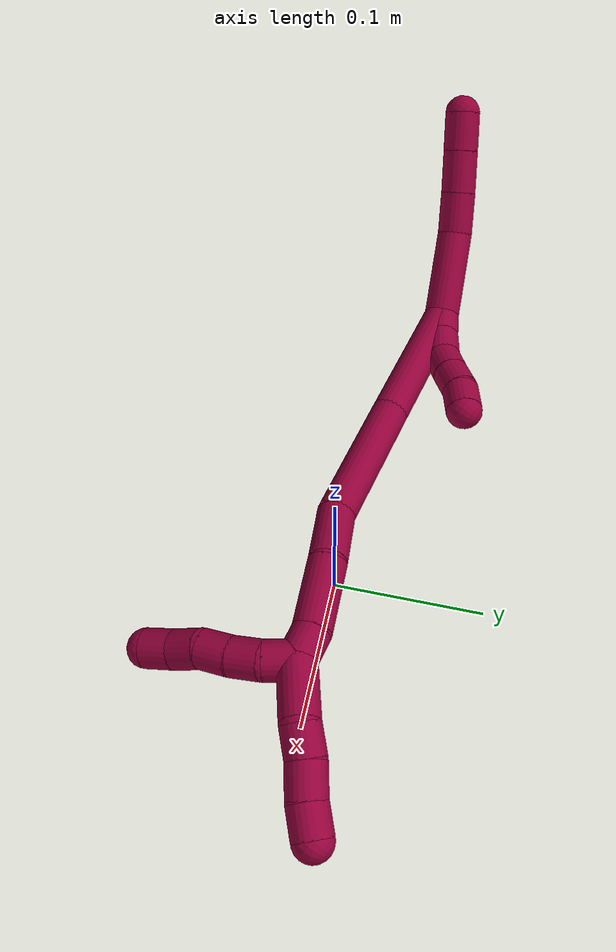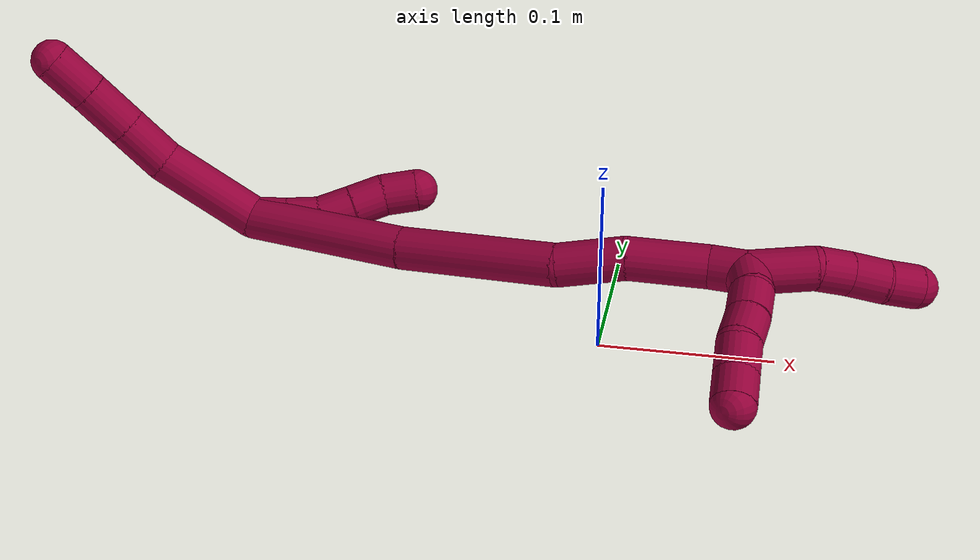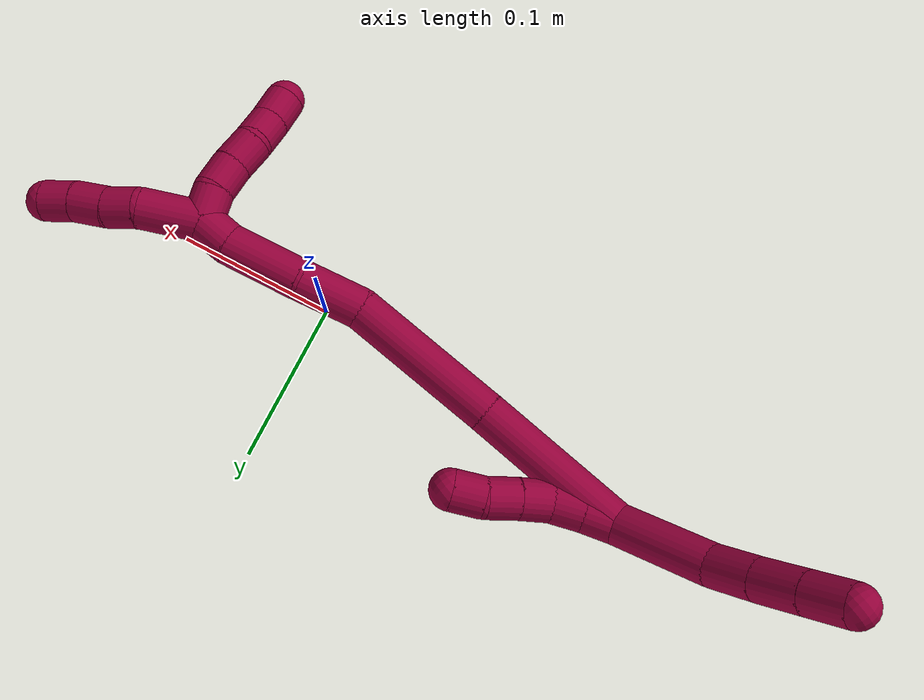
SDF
<sdf version="1.7">
 <world name="default">
  <model name="8">
   <static>0</static>
   <link name="8">
    <collision name="collision-cylinder-e_1_2_8">
     <pose>-0.028159 -0.001225 -0.013415 3.05051 -1.12459 -2.99721</pose>
     <geometry><cylinder><radius>0.0125</radius><length>0.06243</length></cylinder></geometry>
     <surface>
      <friction><ode><mu>1.16</mu><mu2>1.16</mu2><slip1>0</slip1><slip2>0</slip2></ode></friction>
      <contact><ode><kp>1e+06</kp><kd>1</kd><max_vel>0</max_vel><min_depth>0.001</min_depth></ode></contact>
     </surface>
    </collision>
    <visual name="visual-cylinder-e_1_2_8">
     <pose>-0.028159 -0.001225 -0.013415 3.05051 -1.12459 -2.99721</pose>
     <geometry><cylinder><radius>0.0125</radius><length>0.06243</length></cylinder></geometry>
     <material><ambient>0.584314 0 0.227451 1</ambient></material>
    </visual>
    <collision name="collision-cylinder-e_2_8_9">
     <pose>-0.069044 -0.006709 -0.033644 2.58309 -1.00759 -2.18228</pose>
     <geometry><cylinder><radius>0.0125</radius><length>0.030102</length></cylinder></geometry>
     <surface>
      <friction><ode><mu>1.16</mu><mu2>1.16</mu2><slip1>0</slip1><slip2>0</slip2></ode></friction>
      <contact><ode><kp>1e+06</kp><kd>1</kd><max_vel>0</max_vel><min_depth>0.001</min_depth></ode></contact>
     </surface>
    </collision>
    <visual name="visual-cylinder-e_2_8_9">
     <pose>-0.069044 -0.006709 -0.033644 2.58309 -1.00759 -2.18228</pose>
     <geometry><cylinder><radius>0.0125</radius><length>0.030102</length></cylinder></geometry>
     <material><ambient>0.584314 0 0.227451 1</ambient></material>
    </visual>
    <collision name="collision-cylinder-e_3_9_10">
     <pose>-0.094231 -0.015504 -0.047543 2.57197 -0.976952 -2.13452</pose>
     <geometry><cylinder><radius>0.0125</radius><length>0.030067</length></cylinder></geometry>
     <surface>
      <friction><ode><mu>1.16</mu><mu2>1.16</mu2><slip1>0</slip1><slip2>0</slip2></ode></friction>
      <contact><ode><kp>1e+06</kp><kd>1</kd><max_vel>0</max_vel><min_depth>0.001</min_depth></ode></contact>
     </surface>
    </collision>
    <visual name="visual-cylinder-e_3_9_10">
     <pose>-0.094231 -0.015504 -0.047543 2.57197 -0.976952 -2.13452</pose>
     <geometry><cylinder><radius>0.0125</radius><length>0.030067</length></cylinder></geometry>
     <material><ambient>0.584314 0 0.227451 1</ambient></material>
    </visual>
    <collision name="collision-cylinder-e_4_10_6">
     <pose>-0.118072 -0.023912 -0.061197 2.6091 -0.980442 -2.19673</pose>
     <geometry><cylinder><radius>0.0125</radius><length>0.0274</length></cylinder></geometry>
     <surface>
      <friction><ode><mu>1.16</mu><mu2>1.16</mu2><slip1>0</slip1><slip2>0</slip2></ode></friction>
      <contact><ode><kp>1e+06</kp><kd>1</kd><max_vel>0</max_vel><min_depth>0.001</min_depth></ode></contact>
     </surface>
    </collision>
    <visual name="visual-cylinder-e_4_10_6">
     <pose>-0.118072 -0.023912 -0.061197 2.6091 -0.980442 -2.19673</pose>
     <geometry><cylinder><radius>0.0125</radius><length>0.0274</length></cylinder></geometry>
     <material><ambient>0.584314 0 0.227451 1</ambient></material>
    </visual>
    <collision name="collision-cylinder-e_1_2_11">
     <pose>0.007055 -0.004794 0.005219 0.742979 0.78318 0.318992</pose>
     <geometry><cylinder><radius>0.0125</radius><length>0.02</length></cylinder></geometry>
     <surface>
      <friction><ode><mu>1.16</mu><mu2>1.16</mu2><slip1>0</slip1><slip2>0</slip2></ode></friction>
      <contact><ode><kp>1e+06</kp><kd>1</kd><max_vel>0</max_vel><min_depth>0.001</min_depth></ode></contact>
     </surface>
    </collision>
    <visual name="visual-cylinder-e_1_2_11">
     <pose>0.007055 -0.004794 0.005219 0.742979 0.78318 0.318992</pose>
     <geometry><cylinder><radius>0.0125</radius><length>0.02</length></cylinder></geometry>
     <material><ambient>0.584314 0 0.227451 1</ambient></material>
    </visual>
    <collision name="collision-cylinder-e_2_11_12">
     <pose>0.02062 -0.014531 0.0162 0.709024 0.708769 0.272221</pose>
     <geometry><cylinder><radius>0.0125</radius><length>0.02</length></cylinder></geometry>
     <surface>
      <friction><ode><mu>1.16</mu><mu2>1.16</mu2><slip1>0</slip1><slip2>0</slip2></ode></friction>
      <contact><ode><kp>1e+06</kp><kd>1</kd><max_vel>0</max_vel><min_depth>0.001</min_depth></ode></contact>
     </surface>
    </collision>
    <visual name="visual-cylinder-e_2_11_12">
     <pose>0.02062 -0.014531 0.0162 0.709024 0.708769 0.272221</pose>
     <geometry><cylinder><radius>0.0125</radius><length>0.02</length></cylinder></geometry>
     <material><ambient>0.584314 0 0.227451 1</ambient></material>
    </visual>
    <collision name="collision-cylinder-e_3_12_13">
     <pose>0.030977 -0.025664 0.028808 0.735105 0.395052 0.15382</pose>
     <geometry><cylinder><radius>0.0125</radius><length>0.02</length></cylinder></geometry>
     <surface>
      <friction><ode><mu>1.16</mu><mu2>1.16</mu2><slip1>0</slip1><slip2>0</slip2></ode></friction>
      <contact><ode><kp>1e+06</kp><kd>1</kd><max_vel>0</max_vel><min_depth>0.001</min_depth></ode></contact>
     </surface>
    </collision>
    <visual name="visual-cylinder-e_3_12_13">
     <pose>0.030977 -0.025664 0.028808 0.735105 0.395052 0.15382</pose>
     <geometry><cylinder><radius>0.0125</radius><length>0.02</length></cylinder></geometry>
     <material><ambient>0.584314 0 0.227451 1</ambient></material>
    </visual>
    <collision name="collision-cylinder-e_4_13_14">
     <pose>0.03838 -0.037795 0.042871 0.688736 0.363366 0.131588</pose>
     <geometry><cylinder><radius>0.0125</radius><length>0.02</length></cylinder></geometry>
     <surface>
      <friction><ode><mu>1.16</mu><mu2>1.16</mu2><slip1>0</slip1><slip2>0</slip2></ode></friction>
      <contact><ode><kp>1e+06</kp><kd>1</kd><max_vel>0</max_vel><min_depth>0.001</min_depth></ode></contact>
     </surface>
    </collision>
    <visual name="visual-cylinder-e_4_13_14">
     <pose>0.03838 -0.037795 0.042871 0.688736 0.363366 0.131588</pose>
     <geometry><cylinder><radius>0.0125</radius><length>0.02</length></cylinder></geometry>
     <material><ambient>0.584314 0 0.227451 1</ambient></material>
    </visual>
    <collision name="collision-cylinder-e_5_14_5">
     <pose>0.04758 -0.049372 0.056117 0.751703 0.59994 0.242907</pose>
     <geometry><cylinder><radius>0.0125</radius><length>0.02</length></cylinder></geometry>
     <surface>
      <friction><ode><mu>1.16</mu><mu2>1.16</mu2><slip1>0</slip1><slip2>0</slip2></ode></friction>
      <contact><ode><kp>1e+06</kp><kd>1</kd><max_vel>0</max_vel><min_depth>0.001</min_depth></ode></contact>
     </surface>
    </collision>
    <visual name="visual-cylinder-e_5_14_5">
     <pose>0.04758 -0.049372 0.056117 0.751703 0.59994 0.242907</pose>
     <geometry><cylinder><radius>0.0125</radius><length>0.02</length></cylinder></geometry>
     <material><ambient>0.584314 0 0.227451 1</ambient></material>
    </visual>
    <collision name="collision-cylinder-e_1_2_15">
     <pose>0.041262 -0.024949 0.009711 1.19959 0.99524 0.711346</pose>
     <geometry><cylinder><radius>0.0125</radius><length>0.098372</length></cylinder></geometry>
     <surface>
      <friction><ode><mu>1.16</mu><mu2>1.16</mu2><slip1>0</slip1><slip2>0</slip2></ode></friction>
      <contact><ode><kp>1e+06</kp><kd>1</kd><max_vel>0</max_vel><min_depth>0.001</min_depth></ode></contact>
     </surface>
    </collision>
    <visual name="visual-cylinder-e_1_2_15">
     <pose>0.041262 -0.024949 0.009711 1.19959 0.99524 0.711346</pose>
     <geometry><cylinder><radius>0.0125</radius><length>0.098372</length></cylinder></geometry>
     <material><ambient>0.584314 0 0.227451 1</ambient></material>
    </visual>
    <collision name="collision-cylinder-e_2_15_16">
     <pose>0.119972 -0.077235 0.029382 1.22144 0.910279 0.660101</pose>
     <geometry><cylinder><radius>0.0125</radius><length>0.094846</length></cylinder></geometry>
     <surface>
      <friction><ode><mu>1.16</mu><mu2>1.16</mu2><slip1>0</slip1><slip2>0</slip2></ode></friction>
      <contact><ode><kp>1e+06</kp><kd>1</kd><max_vel>0</max_vel><min_depth>0.001</min_depth></ode></contact>
     </surface>
    </collision>
    <visual name="visual-cylinder-e_2_15_16">
     <pose>0.119972 -0.077235 0.029382 1.22144 0.910279 0.660101</pose>
     <geometry><cylinder><radius>0.0125</radius><length>0.094846</length></cylinder></geometry>
     <material><ambient>0.584314 0 0.227451 1</ambient></material>
    </visual>
    <collision name="collision-cylinder-e_3_16_17">
     <pose>0.169965 -0.116982 0.047964 0.963514 0.692828 0.373075</pose>
     <geometry><cylinder><radius>0.0125</radius><length>0.039278</length></cylinder></geometry>
     <surface>
      <friction><ode><mu>1.16</mu><mu2>1.16</mu2><slip1>0</slip1><slip2>0</slip2></ode></friction>
      <contact><ode><kp>1e+06</kp><kd>1</kd><max_vel>0</max_vel><min_depth>0.001</min_depth></ode></contact>
     </surface>
    </collision>
    <visual name="visual-cylinder-e_3_16_17">
     <pose>0.169965 -0.116982 0.047964 0.963514 0.692828 0.373075</pose>
     <geometry><cylinder><radius>0.0125</radius><length>0.039278</length></cylinder></geometry>
     <material><ambient>0.584314 0 0.227451 1</ambient></material>
    </visual>
    <collision name="collision-cylinder-e_4_17_18">
     <pose>0.200626 -0.140554 0.066481 0.845596 0.882006 0.418524</pose>
     <geometry><cylinder><radius>0.0125</radius><length>0.046937</length></cylinder></geometry>
     <surface>
      <friction><ode><mu>1.16</mu><mu2>1.16</mu2><slip1>0</slip1><slip2>0</slip2></ode></friction>
      <contact><ode><kp>1e+06</kp><kd>1</kd><max_vel>0</max_vel><min_depth>0.001</min_depth></ode></contact>
     </surface>
    </collision>
    <visual name="visual-cylinder-e_4_17_18">
     <pose>0.200626 -0.140554 0.066481 0.845596 0.882006 0.418524</pose>
     <geometry><cylinder><radius>0.0125</radius><length>0.046937</length></cylinder></geometry>
     <material><ambient>0.584314 0 0.227451 1</ambient></material>
    </visual>
    <collision name="collision-cylinder-e_5_18_1">
     <pose>0.227133 -0.157296 0.078438 1.21654 0.953971 0.690865</pose>
     <geometry><cylinder><radius>0.0125</radius><length>0.020567</length></cylinder></geometry>
     <surface>
      <friction><ode><mu>1.16</mu><mu2>1.16</mu2><slip1>0</slip1><slip2>0</slip2></ode></friction>
      <contact><ode><kp>1e+06</kp><kd>1</kd><max_vel>0</max_vel><min_depth>0.001</min_depth></ode></contact>
     </surface>
    </collision>
    <visual name="visual-cylinder-e_5_18_1">
     <pose>0.227133 -0.157296 0.078438 1.21654 0.953971 0.690865</pose>
     <geometry><cylinder><radius>0.0125</radius><length>0.020567</length></cylinder></geometry>
     <material><ambient>0.584314 0 0.227451 1</ambient></material>
    </visual>
    <collision name="collision-cylinder-e_1_1_19">
     <pose>0.247118 -0.171816 0.092513 0.639857 0.658983 0.225625</pose>
     <geometry><cylinder><radius>0.0125</radius><length>0.037877</length></cylinder></geometry>
     <surface>
      <friction><ode><mu>1.16</mu><mu2>1.16</mu2><slip1>0</slip1><slip2>0</slip2></ode></friction>
      <contact><ode><kp>1e+06</kp><kd>1</kd><max_vel>0</max_vel><min_depth>0.001</min_depth></ode></contact>
     </surface>
    </collision>
    <visual name="visual-cylinder-e_1_1_19">
     <pose>0.247118 -0.171816 0.092513 0.639857 0.658983 0.225625</pose>
     <geometry><cylinder><radius>0.0125</radius><length>0.037877</length></cylinder></geometry>
     <material><ambient>0.584314 0 0.227451 1</ambient></material>
    </visual>
    <collision name="collision-cylinder-e_2_19_20">
     <pose>0.265363 -0.182492 0.111925 0.230393 0.718656 0.086874</pose>
     <geometry><cylinder><radius>0.0125</radius><length>0.020199</length></cylinder></geometry>
     <surface>
      <friction><ode><mu>1.16</mu><mu2>1.16</mu2><slip1>0</slip1><slip2>0</slip2></ode></friction>
      <contact><ode><kp>1e+06</kp><kd>1</kd><max_vel>0</max_vel><min_depth>0.001</min_depth></ode></contact>
     </surface>
    </collision>
    <visual name="visual-cylinder-e_2_19_20">
     <pose>0.265363 -0.182492 0.111925 0.230393 0.718656 0.086874</pose>
     <geometry><cylinder><radius>0.0125</radius><length>0.020199</length></cylinder></geometry>
     <material><ambient>0.584314 0 0.227451 1</ambient></material>
    </visual>
    <collision name="collision-cylinder-e_3_20_21">
     <pose>0.280234 -0.186564 0.126137 0.330439 0.851502 0.150942</pose>
     <geometry><cylinder><radius>0.0125</radius><length>0.021857</length></cylinder></geometry>
     <surface>
      <friction><ode><mu>1.16</mu><mu2>1.16</mu2><slip1>0</slip1><slip2>0</slip2></ode></friction>
      <contact><ode><kp>1e+06</kp><kd>1</kd><max_vel>0</max_vel><min_depth>0.001</min_depth></ode></contact>
     </surface>
    </collision>
    <visual name="visual-cylinder-e_3_20_21">
     <pose>0.280234 -0.186564 0.126137 0.330439 0.851502 0.150942</pose>
     <geometry><cylinder><radius>0.0125</radius><length>0.021857</length></cylinder></geometry>
     <material><ambient>0.584314 0 0.227451 1</ambient></material>
    </visual>
    <collision name="collision-cylinder-e_4_21_4">
     <pose>0.295071 -0.190689 0.140275 0.23943 0.720073 0.090503</pose>
     <geometry><cylinder><radius>0.0125</radius><length>0.020067</length></cylinder></geometry>
     <surface>
      <friction><ode><mu>1.16</mu><mu2>1.16</mu2><slip1>0</slip1><slip2>0</slip2></ode></friction>
      <contact><ode><kp>1e+06</kp><kd>1</kd><max_vel>0</max_vel><min_depth>0.001</min_depth></ode></contact>
     </surface>
    </collision>
    <visual name="visual-cylinder-e_4_21_4">
     <pose>0.295071 -0.190689 0.140275 0.23943 0.720073 0.090503</pose>
     <geometry><cylinder><radius>0.0125</radius><length>0.020067</length></cylinder></geometry>
     <material><ambient>0.584314 0 0.227451 1</ambient></material>
    </visual>
    <collision name="collision-cylinder-e_1_1_22">
     <pose>0.241435 -0.1642 0.072547 2.97654 0.632799 2.64665</pose>
     <geometry><cylinder><radius>0.0125</radius><length>0.02</length></cylinder></geometry>
     <surface>
      <friction><ode><mu>1.16</mu><mu2>1.16</mu2><slip1>0</slip1><slip2>0</slip2></ode></friction>
      <contact><ode><kp>1e+06</kp><kd>1</kd><max_vel>0</max_vel><min_depth>0.001</min_depth></ode></contact>
     </surface>
    </collision>
    <visual name="visual-cylinder-e_1_1_22">
     <pose>0.241435 -0.1642 0.072547 2.97654 0.632799 2.64665</pose>
     <geometry><cylinder><radius>0.0125</radius><length>0.02</length></cylinder></geometry>
     <material><ambient>0.584314 0 0.227451 1</ambient></material>
    </visual>
    <collision name="collision-cylinder-e_2_22_23">
     <pose>0.25233 -0.164232 0.056019 -2.99187 0.521419 -2.59348</pose>
     <geometry><cylinder><radius>0.0125</radius><length>0.02</length></cylinder></geometry>
     <surface>
      <friction><ode><mu>1.16</mu><mu2>1.16</mu2><slip1>0</slip1><slip2>0</slip2></ode></friction>
      <contact><ode><kp>1e+06</kp><kd>1</kd><max_vel>0</max_vel><min_depth>0.001</min_depth></ode></contact>
     </surface>
    </collision>
    <visual name="visual-cylinder-e_2_22_23">
     <pose>0.25233 -0.164232 0.056019 -2.99187 0.521419 -2.59348</pose>
     <geometry><cylinder><radius>0.0125</radius><length>0.02</length></cylinder></geometry>
     <material><ambient>0.584314 0 0.227451 1</ambient></material>
    </visual>
    <collision name="collision-cylinder-e_3_23_24">
     <pose>0.261328 -0.161212 0.038451 -2.95196 0.413294 -2.28982</pose>
     <geometry><cylinder><radius>0.0125</radius><length>0.02</length></cylinder></geometry>
     <surface>
      <friction><ode><mu>1.16</mu><mu2>1.16</mu2><slip1>0</slip1><slip2>0</slip2></ode></friction>
      <contact><ode><kp>1e+06</kp><kd>1</kd><max_vel>0</max_vel><min_depth>0.001</min_depth></ode></contact>
     </surface>
    </collision>
    <visual name="visual-cylinder-e_3_23_24">
     <pose>0.261328 -0.161212 0.038451 -2.95196 0.413294 -2.28982</pose>
     <geometry><cylinder><radius>0.0125</radius><length>0.02</length></cylinder></geometry>
     <material><ambient>0.584314 0 0.227451 1</ambient></material>
    </visual>
    <collision name="collision-cylinder-e_4_24_25">
     <pose>0.271375 -0.156258 0.022163 -2.72496 0.647308 -2.017</pose>
     <geometry><cylinder><radius>0.0125</radius><length>0.02</length></cylinder></geometry>
     <surface>
      <friction><ode><mu>1.16</mu><mu2>1.16</mu2><slip1>0</slip1><slip2>0</slip2></ode></friction>
      <contact><ode><kp>1e+06</kp><kd>1</kd><max_vel>0</max_vel><min_depth>0.001</min_depth></ode></contact>
     </surface>
    </collision>
    <visual name="visual-cylinder-e_4_24_25">
     <pose>0.271375 -0.156258 0.022163 -2.72496 0.647308 -2.017</pose>
     <geometry><cylinder><radius>0.0125</radius><length>0.02</length></cylinder></geometry>
     <material><ambient>0.584314 0 0.227451 1</ambient></material>
    </visual>
    <collision name="collision-cylinder-e_5_25_3">
     <pose>0.283011 -0.151163 0.0068 -2.91422 0.595144 -2.42878</pose>
     <geometry><cylinder><radius>0.0125</radius><length>0.02</length></cylinder></geometry>
     <surface>
      <friction><ode><mu>1.16</mu><mu2>1.16</mu2><slip1>0</slip1><slip2>0</slip2></ode></friction>
      <contact><ode><kp>1e+06</kp><kd>1</kd><max_vel>0</max_vel><min_depth>0.001</min_depth></ode></contact>
     </surface>
    </collision>
    <visual name="visual-cylinder-e_5_25_3">
     <pose>0.283011 -0.151163 0.0068 -2.91422 0.595144 -2.42878</pose>
     <geometry><cylinder><radius>0.0125</radius><length>0.02</length></cylinder></geometry>
     <material><ambient>0.584314 0 0.227451 1</ambient></material>
    </visual>
    <collision name="collision-sphere-3">
     <pose>0.288618 -0.149296 -0.001267 0 -0 0</pose>
     <geometry><sphere><radius>0.0125</radius></sphere></geometry>
     <surface>
      <friction><ode><mu>1.16</mu><mu2>1.16</mu2><slip1>0</slip1><slip2>0</slip2></ode></friction>
      <contact><ode><kp>1e+06</kp><kd>1</kd><max_vel>0</max_vel><min_depth>0.001</min_depth></ode></contact>
     </surface>
    </collision>
    <visual name="visual-sphere-3">
     <pose>0.288618 -0.149296 -0.001267 0 -0 0</pose>
     <geometry><sphere><radius>0.0125</radius></sphere></geometry>
     <material><ambient>0.584314 0 0.227451 1</ambient></material>
    </visual>
    <collision name="collision-sphere-25">
     <pose>0.277405 -0.15303 0.014868 0 -0 0</pose>
     <geometry><sphere><radius>0.0125</radius></sphere></geometry>
     <surface>
      <friction><ode><mu>1.16</mu><mu2>1.16</mu2><slip1>0</slip1><slip2>0</slip2></ode></friction>
      <contact><ode><kp>1e+06</kp><kd>1</kd><max_vel>0</max_vel><min_depth>0.001</min_depth></ode></contact>
     </surface>
    </collision>
    <visual name="visual-sphere-25">
     <pose>0.277405 -0.15303 0.014868 0 -0 0</pose>
     <geometry><sphere><radius>0.0125</radius></sphere></geometry>
     <material><ambient>0.584314 0 0.227451 1</ambient></material>
    </visual>
    <collision name="collision-sphere-24">
     <pose>0.265344 -0.159486 0.029457 0 -0 0</pose>
     <geometry><sphere><radius>0.0125</radius></sphere></geometry>
     <surface>
      <friction><ode><mu>1.16</mu><mu2>1.16</mu2><slip1>0</slip1><slip2>0</slip2></ode></friction>
      <contact><ode><kp>1e+06</kp><kd>1</kd><max_vel>0</max_vel><min_depth>0.001</min_depth></ode></contact>
     </surface>
    </collision>
    <visual name="visual-sphere-24">
     <pose>0.265344 -0.159486 0.029457 0 -0 0</pose>
     <geometry><sphere><radius>0.0125</radius></sphere></geometry>
     <material><ambient>0.584314 0 0.227451 1</ambient></material>
    </visual>
    <collision name="collision-sphere-23">
     <pose>0.257312 -0.162939 0.047445 0 -0 0</pose>
     <geometry><sphere><radius>0.0125</radius></sphere></geometry>
     <surface>
      <friction><ode><mu>1.16</mu><mu2>1.16</mu2><slip1>0</slip1><slip2>0</slip2></ode></friction>
      <contact><ode><kp>1e+06</kp><kd>1</kd><max_vel>0</max_vel><min_depth>0.001</min_depth></ode></contact>
     </surface>
    </collision>
    <visual name="visual-sphere-23">
     <pose>0.257312 -0.162939 0.047445 0 -0 0</pose>
     <geometry><sphere><radius>0.0125</radius></sphere></geometry>
     <material><ambient>0.584314 0 0.227451 1</ambient></material>
    </visual>
    <collision name="collision-sphere-22">
     <pose>0.247349 -0.165525 0.064593 0 -0 0</pose>
     <geometry><sphere><radius>0.0125</radius></sphere></geometry>
     <surface>
      <friction><ode><mu>1.16</mu><mu2>1.16</mu2><slip1>0</slip1><slip2>0</slip2></ode></friction>
      <contact><ode><kp>1e+06</kp><kd>1</kd><max_vel>0</max_vel><min_depth>0.001</min_depth></ode></contact>
     </surface>
    </collision>
    <visual name="visual-sphere-22">
     <pose>0.247349 -0.165525 0.064593 0 -0 0</pose>
     <geometry><sphere><radius>0.0125</radius></sphere></geometry>
     <material><ambient>0.584314 0 0.227451 1</ambient></material>
    </visual>
    <collision name="collision-sphere-4">
     <pose>0.301688 -0.192478 0.147602 0 -0 0</pose>
     <geometry><sphere><radius>0.0125</radius></sphere></geometry>
     <surface>
      <friction><ode><mu>1.16</mu><mu2>1.16</mu2><slip1>0</slip1><slip2>0</slip2></ode></friction>
      <contact><ode><kp>1e+06</kp><kd>1</kd><max_vel>0</max_vel><min_depth>0.001</min_depth></ode></contact>
     </surface>
    </collision>
    <visual name="visual-sphere-4">
     <pose>0.301688 -0.192478 0.147602 0 -0 0</pose>
     <geometry><sphere><radius>0.0125</radius></sphere></geometry>
     <material><ambient>0.584314 0 0.227451 1</ambient></material>
    </visual>
    <collision name="collision-sphere-21">
     <pose>0.288455 -0.1889 0.132947 0 -0 0</pose>
     <geometry><sphere><radius>0.0125</radius></sphere></geometry>
     <surface>
      <friction><ode><mu>1.16</mu><mu2>1.16</mu2><slip1>0</slip1><slip2>0</slip2></ode></friction>
      <contact><ode><kp>1e+06</kp><kd>1</kd><max_vel>0</max_vel><min_depth>0.001</min_depth></ode></contact>
     </surface>
    </collision>
    <visual name="visual-sphere-21">
     <pose>0.288455 -0.1889 0.132947 0 -0 0</pose>
     <geometry><sphere><radius>0.0125</radius></sphere></geometry>
     <material><ambient>0.584314 0 0.227451 1</ambient></material>
    </visual>
    <collision name="collision-sphere-20">
     <pose>0.272013 -0.184228 0.119326 0 -0 0</pose>
     <geometry><sphere><radius>0.0125</radius></sphere></geometry>
     <surface>
      <friction><ode><mu>1.16</mu><mu2>1.16</mu2><slip1>0</slip1><slip2>0</slip2></ode></friction>
      <contact><ode><kp>1e+06</kp><kd>1</kd><max_vel>0</max_vel><min_depth>0.001</min_depth></ode></contact>
     </surface>
    </collision>
    <visual name="visual-sphere-20">
     <pose>0.272013 -0.184228 0.119326 0 -0 0</pose>
     <geometry><sphere><radius>0.0125</radius></sphere></geometry>
     <material><ambient>0.584314 0 0.227451 1</ambient></material>
    </visual>
    <collision name="collision-sphere-11">
     <pose>0.014111 -0.009588 0.010438 0 -0 0</pose>
     <geometry><sphere><radius>0.0125</radius></sphere></geometry>
     <surface>
      <friction><ode><mu>1.16</mu><mu2>1.16</mu2><slip1>0</slip1><slip2>0</slip2></ode></friction>
      <contact><ode><kp>1e+06</kp><kd>1</kd><max_vel>0</max_vel><min_depth>0.001</min_depth></ode></contact>
     </surface>
    </collision>
    <visual name="visual-sphere-11">
     <pose>0.014111 -0.009588 0.010438 0 -0 0</pose>
     <geometry><sphere><radius>0.0125</radius></sphere></geometry>
     <material><ambient>0.584314 0 0.227451 1</ambient></material>
    </visual>
    <collision name="collision-sphere-6">
     <pose>-0.129453 -0.027784 -0.067768 0 -0 0</pose>
     <geometry><sphere><radius>0.0125</radius></sphere></geometry>
     <surface>
      <friction><ode><mu>1.16</mu><mu2>1.16</mu2><slip1>0</slip1><slip2>0</slip2></ode></friction>
      <contact><ode><kp>1e+06</kp><kd>1</kd><max_vel>0</max_vel><min_depth>0.001</min_depth></ode></contact>
     </surface>
    </collision>
    <visual name="visual-sphere-6">
     <pose>-0.129453 -0.027784 -0.067768 0 -0 0</pose>
     <geometry><sphere><radius>0.0125</radius></sphere></geometry>
     <material><ambient>0.584314 0 0.227451 1</ambient></material>
    </visual>
    <collision name="collision-sphere-10">
     <pose>-0.106691 -0.020041 -0.054627 0 -0 0</pose>
     <geometry><sphere><radius>0.0125</radius></sphere></geometry>
     <surface>
      <friction><ode><mu>1.16</mu><mu2>1.16</mu2><slip1>0</slip1><slip2>0</slip2></ode></friction>
      <contact><ode><kp>1e+06</kp><kd>1</kd><max_vel>0</max_vel><min_depth>0.001</min_depth></ode></contact>
     </surface>
    </collision>
    <visual name="visual-sphere-10">
     <pose>-0.106691 -0.020041 -0.054627 0 -0 0</pose>
     <geometry><sphere><radius>0.0125</radius></sphere></geometry>
     <material><ambient>0.584314 0 0.227451 1</ambient></material>
    </visual>
    <collision name="collision-sphere-9">
     <pose>-0.081771 -0.010967 -0.040459 0 -0 0</pose>
     <geometry><sphere><radius>0.0125</radius></sphere></geometry>
     <surface>
      <friction><ode><mu>1.16</mu><mu2>1.16</mu2><slip1>0</slip1><slip2>0</slip2></ode></friction>
      <contact><ode><kp>1e+06</kp><kd>1</kd><max_vel>0</max_vel><min_depth>0.001</min_depth></ode></contact>
     </surface>
    </collision>
    <visual name="visual-sphere-9">
     <pose>-0.081771 -0.010967 -0.040459 0 -0 0</pose>
     <geometry><sphere><radius>0.0125</radius></sphere></geometry>
     <material><ambient>0.584314 0 0.227451 1</ambient></material>
    </visual>
    <collision name="collision-sphere-2">
     <geometry><sphere><radius>0.0125</radius></sphere></geometry>
     <surface>
      <friction><ode><mu>1.16</mu><mu2>1.16</mu2><slip1>0</slip1><slip2>0</slip2></ode></friction>
      <contact><ode><kp>1e+06</kp><kd>1</kd><max_vel>0</max_vel><min_depth>0.001</min_depth></ode></contact>
     </surface>
    </collision>
    <visual name="visual-sphere-2">
     <geometry><sphere><radius>0.0125</radius></sphere></geometry>
     <material><ambient>0.584314 0 0.227451 1</ambient></material>
    </visual>
    <collision name="collision-sphere-19">
     <pose>0.258714 -0.180756 0.104524 0 -0 0</pose>
     <geometry><sphere><radius>0.0125</radius></sphere></geometry>
     <surface>
      <friction><ode><mu>1.16</mu><mu2>1.16</mu2><slip1>0</slip1><slip2>0</slip2></ode></friction>
      <contact><ode><kp>1e+06</kp><kd>1</kd><max_vel>0</max_vel><min_depth>0.001</min_depth></ode></contact>
     </surface>
    </collision>
    <visual name="visual-sphere-19">
     <pose>0.258714 -0.180756 0.104524 0 -0 0</pose>
     <geometry><sphere><radius>0.0125</radius></sphere></geometry>
     <material><ambient>0.584314 0 0.227451 1</ambient></material>
    </visual>
    <collision name="collision-sphere-8">
     <pose>-0.056318 -0.00245 -0.02683 0 -0 0</pose>
     <geometry><sphere><radius>0.0125</radius></sphere></geometry>
     <surface>
      <friction><ode><mu>1.16</mu><mu2>1.16</mu2><slip1>0</slip1><slip2>0</slip2></ode></friction>
      <contact><ode><kp>1e+06</kp><kd>1</kd><max_vel>0</max_vel><min_depth>0.001</min_depth></ode></contact>
     </surface>
    </collision>
    <visual name="visual-sphere-8">
     <pose>-0.056318 -0.00245 -0.02683 0 -0 0</pose>
     <geometry><sphere><radius>0.0125</radius></sphere></geometry>
     <material><ambient>0.584314 0 0.227451 1</ambient></material>
    </visual>
    <collision name="collision-sphere-12">
     <pose>0.027129 -0.019474 0.021962 0 -0 0</pose>
     <geometry><sphere><radius>0.0125</radius></sphere></geometry>
     <surface>
      <friction><ode><mu>1.16</mu><mu2>1.16</mu2><slip1>0</slip1><slip2>0</slip2></ode></friction>
      <contact><ode><kp>1e+06</kp><kd>1</kd><max_vel>0</max_vel><min_depth>0.001</min_depth></ode></contact>
     </surface>
    </collision>
    <visual name="visual-sphere-12">
     <pose>0.027129 -0.019474 0.021962 0 -0 0</pose>
     <geometry><sphere><radius>0.0125</radius></sphere></geometry>
     <material><ambient>0.584314 0 0.227451 1</ambient></material>
    </visual>
    <collision name="collision-sphere-13">
     <pose>0.034826 -0.031854 0.035655 0 -0 0</pose>
     <geometry><sphere><radius>0.0125</radius></sphere></geometry>
     <surface>
      <friction><ode><mu>1.16</mu><mu2>1.16</mu2><slip1>0</slip1><slip2>0</slip2></ode></friction>
      <contact><ode><kp>1e+06</kp><kd>1</kd><max_vel>0</max_vel><min_depth>0.001</min_depth></ode></contact>
     </surface>
    </collision>
    <visual name="visual-sphere-13">
     <pose>0.034826 -0.031854 0.035655 0 -0 0</pose>
     <geometry><sphere><radius>0.0125</radius></sphere></geometry>
     <material><ambient>0.584314 0 0.227451 1</ambient></material>
    </visual>
    <collision name="collision-sphere-14">
     <pose>0.041934 -0.043735 0.050088 0 -0 0</pose>
     <geometry><sphere><radius>0.0125</radius></sphere></geometry>
     <surface>
      <friction><ode><mu>1.16</mu><mu2>1.16</mu2><slip1>0</slip1><slip2>0</slip2></ode></friction>
      <contact><ode><kp>1e+06</kp><kd>1</kd><max_vel>0</max_vel><min_depth>0.001</min_depth></ode></contact>
     </surface>
    </collision>
    <visual name="visual-sphere-14">
     <pose>0.041934 -0.043735 0.050088 0 -0 0</pose>
     <geometry><sphere><radius>0.0125</radius></sphere></geometry>
     <material><ambient>0.584314 0 0.227451 1</ambient></material>
    </visual>
    <collision name="collision-sphere-5">
     <pose>0.053226 -0.055008 0.062147 0 -0 0</pose>
     <geometry><sphere><radius>0.0125</radius></sphere></geometry>
     <surface>
      <friction><ode><mu>1.16</mu><mu2>1.16</mu2><slip1>0</slip1><slip2>0</slip2></ode></friction>
      <contact><ode><kp>1e+06</kp><kd>1</kd><max_vel>0</max_vel><min_depth>0.001</min_depth></ode></contact>
     </surface>
    </collision>
    <visual name="visual-sphere-5">
     <pose>0.053226 -0.055008 0.062147 0 -0 0</pose>
     <geometry><sphere><radius>0.0125</radius></sphere></geometry>
     <material><ambient>0.584314 0 0.227451 1</ambient></material>
    </visual>
    <collision name="collision-sphere-15">
     <pose>0.082523 -0.049897 0.019423 0 -0 0</pose>
     <geometry><sphere><radius>0.0125</radius></sphere></geometry>
     <surface>
      <friction><ode><mu>1.16</mu><mu2>1.16</mu2><slip1>0</slip1><slip2>0</slip2></ode></friction>
      <contact><ode><kp>1e+06</kp><kd>1</kd><max_vel>0</max_vel><min_depth>0.001</min_depth></ode></contact>
     </surface>
    </collision>
    <visual name="visual-sphere-15">
     <pose>0.082523 -0.049897 0.019423 0 -0 0</pose>
     <geometry><sphere><radius>0.0125</radius></sphere></geometry>
     <material><ambient>0.584314 0 0.227451 1</ambient></material>
    </visual>
    <collision name="collision-sphere-16">
     <pose>0.157421 -0.104573 0.039341 0 -0 0</pose>
     <geometry><sphere><radius>0.0125</radius></sphere></geometry>
     <surface>
      <friction><ode><mu>1.16</mu><mu2>1.16</mu2><slip1>0</slip1><slip2>0</slip2></ode></friction>
      <contact><ode><kp>1e+06</kp><kd>1</kd><max_vel>0</max_vel><min_depth>0.001</min_depth></ode></contact>
     </surface>
    </collision>
    <visual name="visual-sphere-16">
     <pose>0.157421 -0.104573 0.039341 0 -0 0</pose>
     <geometry><sphere><radius>0.0125</radius></sphere></geometry>
     <material><ambient>0.584314 0 0.227451 1</ambient></material>
    </visual>
    <collision name="collision-sphere-17">
     <pose>0.182508 -0.129391 0.056587 0 -0 0</pose>
     <geometry><sphere><radius>0.0125</radius></sphere></geometry>
     <surface>
      <friction><ode><mu>1.16</mu><mu2>1.16</mu2><slip1>0</slip1><slip2>0</slip2></ode></friction>
      <contact><ode><kp>1e+06</kp><kd>1</kd><max_vel>0</max_vel><min_depth>0.001</min_depth></ode></contact>
     </surface>
    </collision>
    <visual name="visual-sphere-17">
     <pose>0.182508 -0.129391 0.056587 0 -0 0</pose>
     <geometry><sphere><radius>0.0125</radius></sphere></geometry>
     <material><ambient>0.584314 0 0.227451 1</ambient></material>
    </visual>
    <collision name="collision-sphere-18">
     <pose>0.218744 -0.151717 0.076375 0 -0 0</pose>
     <geometry><sphere><radius>0.0125</radius></sphere></geometry>
     <surface>
      <friction><ode><mu>1.16</mu><mu2>1.16</mu2><slip1>0</slip1><slip2>0</slip2></ode></friction>
      <contact><ode><kp>1e+06</kp><kd>1</kd><max_vel>0</max_vel><min_depth>0.001</min_depth></ode></contact>
     </surface>
    </collision>
    <visual name="visual-sphere-18">
     <pose>0.218744 -0.151717 0.076375 0 -0 0</pose>
     <geometry><sphere><radius>0.0125</radius></sphere></geometry>
     <material><ambient>0.584314 0 0.227451 1</ambient></material>
    </visual>
    <collision name="collision-sphere-1">
     <pose>0.235521 -0.162876 0.080502 0 -0 0</pose>
     <geometry><sphere><radius>0.0125</radius></sphere></geometry>
     <surface>
      <friction><ode><mu>1.16</mu><mu2>1.16</mu2><slip1>0</slip1><slip2>0</slip2></ode></friction>
      <contact><ode><kp>1e+06</kp><kd>1</kd><max_vel>0</max_vel><min_depth>0.001</min_depth></ode></contact>
     </surface>
    </collision>
    <visual name="visual-sphere-1">
     <pose>0.235521 -0.162876 0.080502 0 -0 0</pose>
     <geometry><sphere><radius>0.0125</radius></sphere></geometry>
     <material><ambient>0.584314 0 0.227451 1</ambient></material>
    </visual>
    <inertial>
     <pose>0.109527 -0.083052 0.031525 0 -0 0</pose>
     <mass>0.75</mass>
     <inertia>
      <ixx>0.000157</ixx>
      <ixy>0</ixy>
      <ixz>0</ixz>
      <iyy>0.000223</iyy>
      <iyz>0</iyz>
      <izz>-1.8e-05</izz>
     </inertia>
    </inertial>
   </link>
   <pose>-0.212761 0.036892 0.043915 -1.72171 0.511249 -0.500795</pose>
  </model>
 </world>
</sdf>
